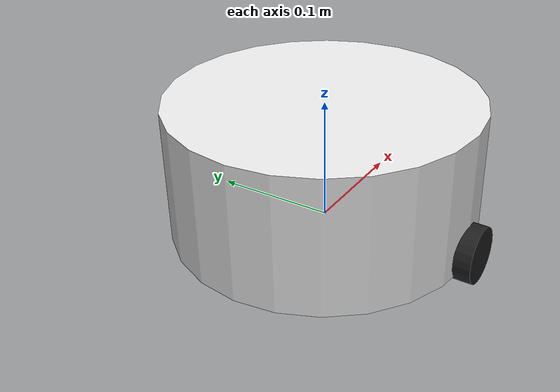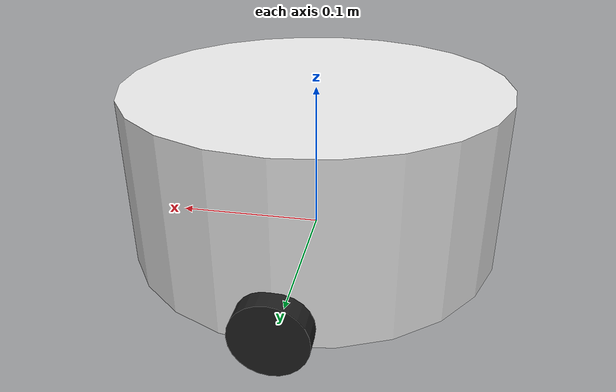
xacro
<?xml version='1.0'?>
<robot name="Edymobile" xmlns:xacro="http://ros.org/wiki/xacro">

    <xacro:include filename="$(find swisscat_robot)/urdf/utils/inertia.xacro" />
    <xacro:include filename="$(find swisscat_robot)/urdf/utils/materials.xacro" />

    <xacro:property name="wheel_radius" value="0.0225"/>
    <xacro:property name="wheel_len" value="0.02"/>
    <xacro:arg name="mass" default="0.270"/>
    <xacro:property name="mass_p" value="$(arg mass)"/>
    <xacro:property name="body_mass" value="${mass_p * 0.80}"/>
    <xacro:property name="wheel_mass" value="${mass_p * 0.10}"/>
    <xacro:arg name="robotNamespace" default="/edymobile" />

   <link name="base_link" />
   <!-- ********************** ROBOT BASE *********************************  -->
   <link name="base_center" >
	<visual>
		<origin xyz="0 0 0" rpy="0 0 0"/>
		<geometry>
			<cylinder radius="0.125" length="0.11"/>
		</geometry>
		<material name="white"/>
	</visual>
	<collision>
		<origin xyz="0 0 0" rpy="0 0 0"/>
		<geometry>
			<cylinder radius="0.125" length="0.11"/>
		</geometry>
	</collision>
	<inertial>
		<mass value="${body_mass}"/>
		<xacro:cylinder_inertia mass="${body_mass}" h="0.11" r="0.125"/>
	</inertial>
   </link>
   <!-- ********************** LEFT WHEEL *********************************  -->
   <link name="left_wheel" >
	<visual>
		<origin xyz="0 0 0" rpy="1.5707 -0 0"/>
		<geometry>
			<cylinder length="${wheel_len}" radius="${wheel_radius}"/>
		</geometry>
		<material name="black"/>
	</visual>
	<collision>
		<origin xyz="0 0 0" rpy="1.5707 -0 0"/>
		<geometry>
			<cylinder length="${wheel_len}" radius="${wheel_radius}"/>
		</geometry>
	</collision>
	<inertial>
		<mass value="${wheel_mass}"/>
		<xacro:cylinder_inertia mass="${wheel_mass}" h="${wheel_len}" r="${wheel_radius}"/>
	</inertial>
   </link>
   <!-- ********************** RIGHT WHEEL *********************************  -->
   <link name="right_wheel" >
	<visual>
		<origin xyz="0 0 0" rpy="1.5707 -0 0"/>
		<geometry>
			<cylinder length="${wheel_len}" radius="${wheel_radius}"/>
		</geometry>
		<material name="black"/>
	</visual>
	<collision>
		<origin xyz="0 0 0" rpy="1.5707 -0 0"/>
		<geometry>
			<cylinder length="${wheel_len}" radius="${wheel_radius}"/>
		</geometry>
	</collision>
	<inertial>
		<mass value="${wheel_mass}"/>
		<xacro:cylinder_inertia mass="${wheel_mass}" h="${wheel_len}" r="${wheel_radius}"/>
	</inertial>
   </link>
   <!-- ********************** BALL 1 *********************************  -->
   <link name="ball_1" >
	<visual>
	<origin xyz="0 0 0" rpy="1.5707 -0 0"/>
	<geometry>
		<sphere radius="0.0225"/>
	</geometry>
	</visual>
	<collision>
	<origin xyz="0 0 0" rpy="0 0 0"/>
	<geometry>
		<sphere radius="0.0225"/>
	</geometry>
	</collision>
   </link>
   <!-- ********************** BALL 2 *********************************  -->
   <link name="ball_2" >
	<visual>
	<origin xyz="0 0 0" rpy="1.5707 -0 0"/>
	<geometry>
		<sphere radius="0.0225"/>
	</geometry>
	</visual>
	<collision>
	<origin xyz="0 0 0" rpy="0 0 0"/>
	<geometry>
		<sphere radius="0.0225"/>
	</geometry>
	</collision>
  </link>

   <!-- ********************** JOINTS *********************************  -->
  <joint name="joint0" type="fixed">
   	<parent link="base_link"/>
   	<child link="base_center"/>
   	<origin xyz="0 0 0.05" rpy="0 0 0"/>
  </joint>

  <joint name="left_wheel_joint" type="continuous">
   	<parent link="base_center"/>
   	<child link="left_wheel"/>
   	<origin xyz="0 -0.126 -0.0427"/>
      	<axis xyz="0 1 0"/>
      	<limit  effort="-1" velocity ="-1"/>
	<dynamics spring_reference="0" spring_stiffness="0" damping ="0"/>
  </joint>

  <joint name="right_wheel_joint" type="continuous">
  	<parent link="base_center"/>
  	<child link="right_wheel"/>
  	<origin xyz="0 0.126 -0.0427"/>
      	<axis xyz="0 1 0"/>
      	<limit  effort="-1" velocity ="-1"/>
	<dynamics spring_reference="0" spring_stiffness="0" damping ="0"/>
  </joint>

  <joint name="joint3" type="fixed">
  	<parent link="base_center"/>
  	<child link="ball_1"/>
  	<origin xyz="-0.08 0 -0.0425" rpy="0 0 0"/>
  </joint>

  <joint name="joint4" type="fixed">
  	<parent link="base_center"/>
  	<child link="ball_2"/>
  	<origin xyz="0.08 0 -0.0425" rpy="0 0 0"/>
  </joint>

  <!-- ********************** TRANSMISSION *********************************  -->

    <transmission name="left_wheel_trans">
	<type>transmission_interface/SimpleTransmission</type>
	<actuator name="$left_wheel_motor">
	<mechanicalReduction>1</mechanicalReduction>
	</actuator>
	<joint name="left_wheel_joint">
	<hardwareInterface>hardware_interface/VelocityJointInterface</hardwareInterface>
	</joint>
  </transmission>

  <transmission name="right_wheel_trans">
	<type>transmission_interface/SimpleTransmission</type>
	<actuator name="$right_wheel_motor">
	<mechanicalReduction>1</mechanicalReduction>
	</actuator>
	<joint name="right_wheel_joint">
	<hardwareInterface>hardware_interface/VelocityJointInterface</hardwareInterface>
	</joint>
  </transmission>

  <!-- ********************** GAZEBO *********************************  -->
	<gazebo reference="right_wheel">
		<material>Gazebo/Black</material>
		<mu1 value="200.0"/>
		<mu2 value="100.0"/>
		<kp value="10000000.0" />
		<kd value="1.0" />
		<fdir1 value="1 0 0"/>
	</gazebo>
	<gazebo reference="left_wheel">
		<material>Gazebo/Black</material>
		<mu1 value="200.0"/>
	  	<mu2 value="100.0"/>
	  	<kp value="10000000.0" />
	  	<kd value="1.0" />
	  	<fdir1 value="1 0 0"/>
	</gazebo>
	<gazebo reference="base_link">
		<material>Gazebo/White</material>
	</gazebo>

	<!-- Diff drive -->
	<gazebo>
		<plugin name="gazebo_ros_diff_drive" filename="libgazebo_ros_diff_drive.so">
			<alwaysOn>true</alwaysOn>
			<updateRate>10</updateRate>
			<max_wheel_torque>100</max_wheel_torque>
			<left_joint>joint_wheel_left</left_joint>
			<right_joint>joint_wheel_right</right_joint>
			<wheel_separation>0.0955</wheel_separation>
			<wheel_diameter>0.044</wheel_diameter>
            <command_topic>cmd_vel</command_topic>
            <publish_odom>true</publish_odom>
            <publish_odom_tf>true</publish_odom_tf>
            <odometry_topic>odom</odometry_topic>
            <odometry_frame>odom</odometry_frame>
			<robot_base_frame>base_link</robot_base_frame>
			<ros>
                <namespace>$(arg robotNamespace)</namespace>
            </ros>
		</plugin>
	</gazebo>

</robot>
